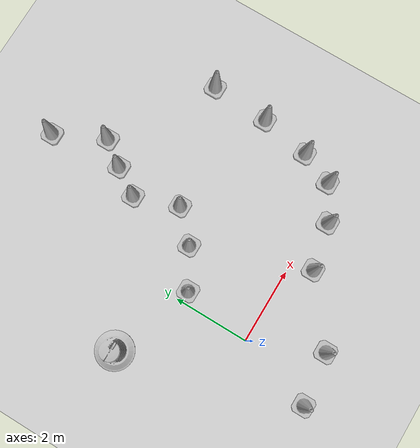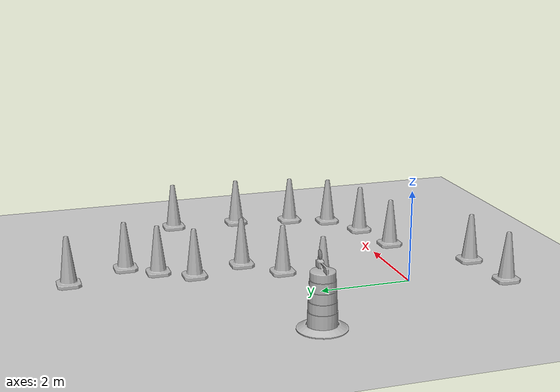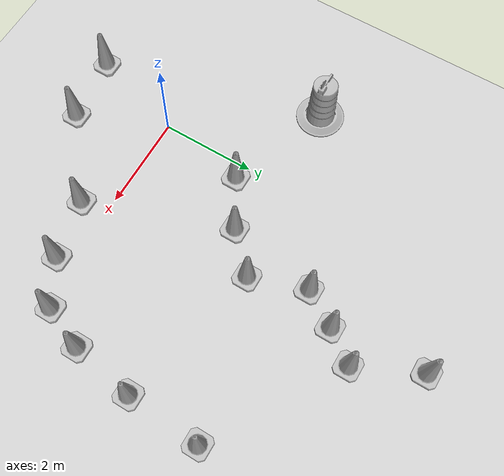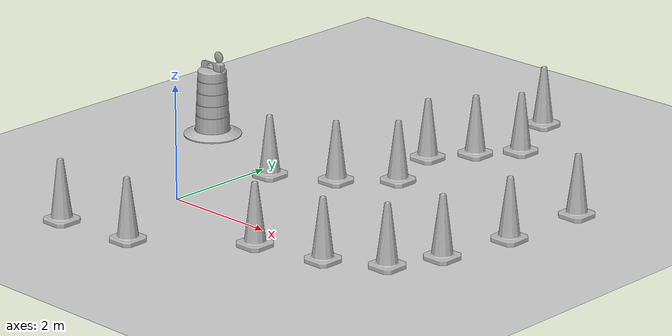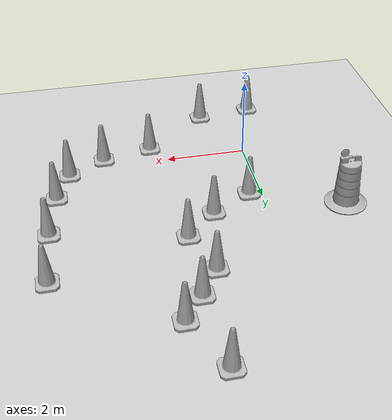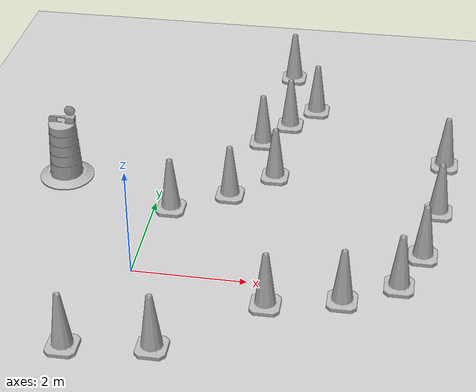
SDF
<sdf version="1.7">
 <world name="default">
  <light name="sun" type="directional">
   <pose>0 0 10 0 -0 0</pose>
   <diffuse>0.8 0.8 0.8 1</diffuse>
   <specular>0.2 0.2 0.2 1</specular>
   <attenuation>
    <range>1000</range>
    <constant>0.9</constant>
    <linear>0.01</linear>
    <quadratic>0.001</quadratic>
   </attenuation>
   <direction>-0.5 0.1 -0.9</direction>
   <spot><inner_angle>0</inner_angle><outer_angle>0</outer_angle><falloff>0</falloff></spot>
  </light>
  <model name="ground_plane">
   <static>1</static>
   <link name="link">
    <collision name="collision">
     <geometry><plane><normal>0 0 1</normal><size>100 100</size></plane></geometry>
     <surface>
      <contact><collide_bitmask>65535</collide_bitmask></contact>
      <friction><ode><mu>100</mu><mu2>50</mu2></ode></friction>
     </surface>
    </collision>
    <visual name="visual">
     <cast_shadows>0</cast_shadows>
     <geometry><plane><normal>0 0 1</normal><size>100 100</size></plane></geometry>
     <material>
      <script><uri>file://media/materials/scripts/gazebo.material</uri><name>Gazebo/Grey</name></script>
     </material>
    </visual>
   </link>
  </model>
  <gravity>0 0 -9.8</gravity>
  <magnetic_field>6e-06 2.3e-05 -4.2e-05</magnetic_field>
  <atmosphere type="adiabatic"/>
  <physics type="ode">
   <max_step_size>0.001</max_step_size>
   <real_time_factor>1</real_time_factor>
   <real_time_update_rate>1000</real_time_update_rate>
  </physics>
  <scene><ambient>0.4 0.4 0.4 1</ambient><background>0.7 0.7 0.7 1</background><shadows>1</shadows></scene>
  <spherical_coordinates>
   <surface_model>EARTH_WGS84</surface_model>
   <latitude_deg>0</latitude_deg>
   <longitude_deg>0</longitude_deg>
   <elevation>0</elevation>
   <heading_deg>0</heading_deg>
  </spherical_coordinates>
  <model name="Construction Cone">
   <link name="link">
    <collision name="collision">
     <geometry>
      <mesh><scale>10 10 10</scale><uri>model://construction_cone/meshes/construction_cone.dae</uri></mesh>
     </geometry>
    </collision>
    <visual name="visual">
     <geometry>
      <mesh><scale>10 10 10</scale><uri>model://construction_cone/meshes/construction_cone.dae</uri></mesh>
     </geometry>
    </visual>
    <inertial>
     <inertia><ixx>1</ixx><ixy>0</ixy><ixz>0</ixz><iyy>1</iyy><iyz>0</iyz><izz>1</izz></inertia>
     <mass>1</mass>
    </inertial>
   </link>
   <pose>2.05547 3.15222 0 -0 -0 -0</pose>
  </model>
  <model name="Construction Barrel">
   <link name="link">
    <inertial>
     <pose>0 0 0.4 0 -0 0</pose>
     <mass>500</mass>
     <inertia><ixx>51.2096</ixx><iyy>51.2096</iyy><izz>25</izz><ixy>0</ixy><ixz>0</ixz><iyz>0</iyz></inertia>
    </inertial>
    <collision name="collision">
     <geometry><mesh><uri>model://construction_barrel/meshes/construction_barrel.dae</uri></mesh></geometry>
    </collision>
    <visual name="visual">
     <geometry><mesh><uri>model://construction_barrel/meshes/construction_barrel.dae</uri></mesh></geometry>
    </visual>
   </link>
   <pose>-1.88295 2.64649 -0 0 -0 -3e-05</pose>
  </model>
  <model name="Construction Cone_clone">
   <link name="link">
    <collision name="collision">
     <geometry>
      <mesh><scale>10 10 10</scale><uri>model://construction_cone/meshes/construction_cone.dae</uri></mesh>
     </geometry>
    </collision>
    <visual name="visual">
     <geometry>
      <mesh><scale>10 10 10</scale><uri>model://construction_cone/meshes/construction_cone.dae</uri></mesh>
     </geometry>
    </visual>
    <inertial>
     <inertia><ixx>1</ixx><ixy>0</ixy><ixz>0</ixz><iyy>1</iyy><iyz>0</iyz><izz>1</izz></inertia>
     <mass>1</mass>
    </inertial>
   </link>
   <pose>2.38991 -0.555289 0 -0 -0 -0</pose>
  </model>
  <model name="Construction Cone_clone_0">
   <link name="link">
    <collision name="collision">
     <geometry>
      <mesh><scale>10 10 10</scale><uri>model://construction_cone/meshes/construction_cone.dae</uri></mesh>
     </geometry>
    </collision>
    <visual name="visual">
     <geometry>
      <mesh><scale>10 10 10</scale><uri>model://construction_cone/meshes/construction_cone.dae</uri></mesh>
     </geometry>
    </visual>
    <inertial>
     <inertia><ixx>1</ixx><ixy>0</ixy><ixz>0</ixz><iyy>1</iyy><iyz>0</iyz><izz>1</izz></inertia>
     <mass>1</mass>
    </inertial>
   </link>
   <pose>3.62602 -0.277509 -0 1e-06 -1e-06 0</pose>
  </model>
  <model name="Construction Cone_clone_1">
   <link name="link">
    <collision name="collision">
     <geometry>
      <mesh><scale>10 10 10</scale><uri>model://construction_cone/meshes/construction_cone.dae</uri></mesh>
     </geometry>
    </collision>
    <visual name="visual">
     <geometry>
      <mesh><scale>10 10 10</scale><uri>model://construction_cone/meshes/construction_cone.dae</uri></mesh>
     </geometry>
    </visual>
    <inertial>
     <inertia><ixx>1</ixx><ixy>0</ixy><ixz>0</ixz><iyy>1</iyy><iyz>0</iyz><izz>1</izz></inertia>
     <mass>1</mass>
    </inertial>
   </link>
   <pose>4.90111 1.11537 -0 0 -1e-06 0</pose>
  </model>
  <model name="Construction Cone_clone_2">
   <link name="link">
    <collision name="collision">
     <geometry>
      <mesh><scale>10 10 10</scale><uri>model://construction_cone/meshes/construction_cone.dae</uri></mesh>
     </geometry>
    </collision>
    <visual name="visual">
     <geometry>
      <mesh><scale>10 10 10</scale><uri>model://construction_cone/meshes/construction_cone.dae</uri></mesh>
     </geometry>
    </visual>
    <inertial>
     <inertia><ixx>1</ixx><ixy>0</ixy><ixz>0</ixz><iyy>1</iyy><iyz>0</iyz><izz>1</izz></inertia>
     <mass>1</mass>
    </inertial>
   </link>
   <pose>5.23643 4.01105 -0 0 -0 0</pose>
  </model>
  <model name="Construction Cone_clone_3">
   <link name="link">
    <collision name="collision">
     <geometry>
      <mesh><scale>10 10 10</scale><uri>model://construction_cone/meshes/construction_cone.dae</uri></mesh>
     </geometry>
    </collision>
    <visual name="visual">
     <geometry>
      <mesh><scale>10 10 10</scale><uri>model://construction_cone/meshes/construction_cone.dae</uri></mesh>
     </geometry>
    </visual>
    <inertial>
     <inertia><ixx>1</ixx><ixy>0</ixy><ixz>0</ixz><iyy>1</iyy><iyz>0</iyz><izz>1</izz></inertia>
     <mass>1</mass>
    </inertial>
   </link>
   <pose>0.312088 1.85785 -0 0 -0 0</pose>
  </model>
  <model name="Construction Cone_clone_4">
   <link name="link">
    <collision name="collision">
     <geometry>
      <mesh><scale>10 10 10</scale><uri>model://construction_cone/meshes/construction_cone.dae</uri></mesh>
     </geometry>
    </collision>
    <visual name="visual">
     <geometry>
      <mesh><scale>10 10 10</scale><uri>model://construction_cone/meshes/construction_cone.dae</uri></mesh>
     </geometry>
    </visual>
    <inertial>
     <inertia><ixx>1</ixx><ixy>0</ixy><ixz>0</ixz><iyy>1</iyy><iyz>0</iyz><izz>1</izz></inertia>
     <mass>1</mass>
    </inertial>
   </link>
   <pose>2.59327 5.66501 -0 0 -0 0</pose>
  </model>
  <model name="Construction Cone_clone_5">
   <link name="link">
    <collision name="collision">
     <geometry>
      <mesh><scale>10 10 10</scale><uri>model://construction_cone/meshes/construction_cone.dae</uri></mesh>
     </geometry>
    </collision>
    <visual name="visual">
     <geometry>
      <mesh><scale>10 10 10</scale><uri>model://construction_cone/meshes/construction_cone.dae</uri></mesh>
     </geometry>
    </visual>
    <inertial>
     <inertia><ixx>1</ixx><ixy>0</ixy><ixz>0</ixz><iyy>1</iyy><iyz>0</iyz><izz>1</izz></inertia>
     <mass>1</mass>
    </inertial>
   </link>
   <pose>1.96913 6.98242 -0 0 -0 0</pose>
  </model>
  <model name="Construction Cone_clone_6">
   <link name="link">
    <collision name="collision">
     <geometry>
      <mesh><scale>10 10 10</scale><uri>model://construction_cone/meshes/construction_cone.dae</uri></mesh>
     </geometry>
    </collision>
    <visual name="visual">
     <geometry>
      <mesh><scale>10 10 10</scale><uri>model://construction_cone/meshes/construction_cone.dae</uri></mesh>
     </geometry>
    </visual>
    <inertial>
     <inertia><ixx>1</ixx><ixy>0</ixy><ixz>0</ixz><iyy>1</iyy><iyz>0</iyz><izz>1</izz></inertia>
     <mass>1</mass>
    </inertial>
   </link>
   <pose>4.53279 0.235934 -0 0 -1e-06 0</pose>
  </model>
  <model name="Construction Cone_clone_7">
   <link name="link">
    <collision name="collision">
     <geometry>
      <mesh><scale>10 10 10</scale><uri>model://construction_cone/meshes/construction_cone.dae</uri></mesh>
     </geometry>
    </collision>
    <visual name="visual">
     <geometry>
      <mesh><scale>10 10 10</scale><uri>model://construction_cone/meshes/construction_cone.dae</uri></mesh>
     </geometry>
    </visual>
    <inertial>
     <inertia><ixx>1</ixx><ixy>0</ixy><ixz>0</ixz><iyy>1</iyy><iyz>0</iyz><izz>1</izz></inertia>
     <mass>1</mass>
    </inertial>
   </link>
   <pose>5.14155 2.44719 0 -0 -0 -0</pose>
  </model>
  <model name="Construction Cone_clone_8">
   <link name="link">
    <collision name="collision">
     <geometry>
      <mesh><scale>10 10 10</scale><uri>model://construction_cone/meshes/construction_cone.dae</uri></mesh>
     </geometry>
    </collision>
    <visual name="visual">
     <geometry>
      <mesh><scale>10 10 10</scale><uri>model://construction_cone/meshes/construction_cone.dae</uri></mesh>
     </geometry>
    </visual>
    <inertial>
     <inertia><ixx>1</ixx><ixy>0</ixy><ixz>0</ixz><iyy>1</iyy><iyz>0</iyz><izz>1</izz></inertia>
     <mass>1</mass>
    </inertial>
   </link>
   <pose>1.66086 4.31999 -0 0 -0 0</pose>
  </model>
  <model name="Construction Cone_clone_9">
   <link name="link">
    <collision name="collision">
     <geometry>
      <mesh><scale>10 10 10</scale><uri>model://construction_cone/meshes/construction_cone.dae</uri></mesh>
     </geometry>
    </collision>
    <visual name="visual">
     <geometry>
      <mesh><scale>10 10 10</scale><uri>model://construction_cone/meshes/construction_cone.dae</uri></mesh>
     </geometry>
    </visual>
    <inertial>
     <inertia><ixx>1</ixx><ixy>0</ixy><ixz>0</ixz><iyy>1</iyy><iyz>0</iyz><izz>1</izz></inertia>
     <mass>1</mass>
    </inertial>
   </link>
   <pose>0.782148 -1.8267 -0 0 -0 0</pose>
  </model>
  <model name="Construction Cone_clone_10">
   <link name="link">
    <collision name="collision">
     <geometry>
      <mesh><scale>10 10 10</scale><uri>model://construction_cone/meshes/construction_cone.dae</uri></mesh>
     </geometry>
    </collision>
    <visual name="visual">
     <geometry>
      <mesh><scale>10 10 10</scale><uri>model://construction_cone/meshes/construction_cone.dae</uri></mesh>
     </geometry>
    </visual>
    <inertial>
     <inertia><ixx>1</ixx><ixy>0</ixy><ixz>0</ixz><iyy>1</iyy><iyz>0</iyz><izz>1</izz></inertia>
     <mass>1</mass>
    </inertial>
   </link>
   <pose>2.11768 5.02842 -0 0 -0 0</pose>
  </model>
  <model name="Construction Cone_clone_11">
   <link name="link">
    <collision name="collision">
     <geometry>
      <mesh><scale>10 10 10</scale><uri>model://construction_cone/meshes/construction_cone.dae</uri></mesh>
     </geometry>
    </collision>
    <visual name="visual">
     <geometry>
      <mesh><scale>10 10 10</scale><uri>model://construction_cone/meshes/construction_cone.dae</uri></mesh>
     </geometry>
    </visual>
    <inertial>
     <inertia><ixx>1</ixx><ixy>0</ixy><ixz>0</ixz><iyy>1</iyy><iyz>0</iyz><izz>1</izz></inertia>
     <mass>1</mass>
    </inertial>
   </link>
   <pose>1.30867 2.43008 0 -0 -0 -0</pose>
  </model>
  <model name="Construction Cone_clone_12">
   <link name="link">
    <collision name="collision">
     <geometry>
      <mesh><scale>10 10 10</scale><uri>model://construction_cone/meshes/construction_cone.dae</uri></mesh>
     </geometry>
    </collision>
    <visual name="visual">
     <geometry>
      <mesh><scale>10 10 10</scale><uri>model://construction_cone/meshes/construction_cone.dae</uri></mesh>
     </geometry>
    </visual>
    <inertial>
     <inertia><ixx>1</ixx><ixy>0</ixy><ixz>0</ixz><iyy>1</iyy><iyz>0</iyz><izz>1</izz></inertia>
     <mass>1</mass>
    </inertial>
   </link>
   <pose>-0.613338 -1.99616 -0 0 -0 0</pose>
  </model>
 </world>
</sdf>
